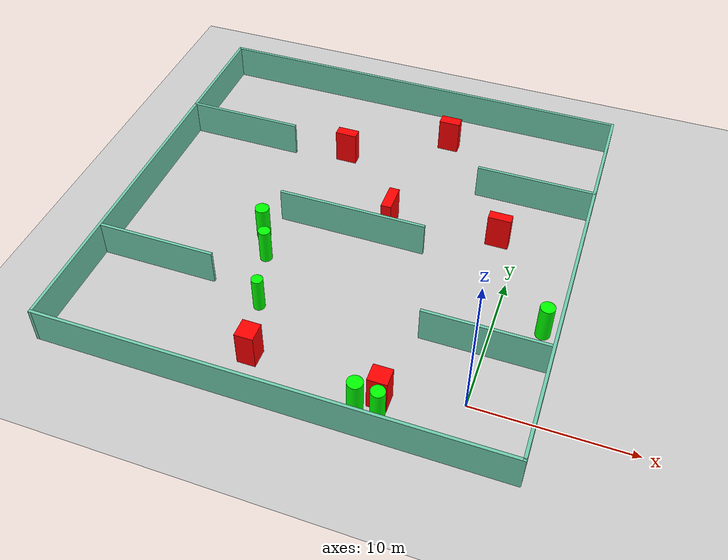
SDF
<sdf version="1.7">
 <world name="default">
  <light name="sun" type="directional">
   <pose>0 0 10 0 -0 0</pose>
   <diffuse>0.8 0.8 0.8 1</diffuse>
   <specular>0.2 0.2 0.2 1</specular>
   <attenuation>
    <range>1000</range>
    <constant>0.9</constant>
    <linear>0.01</linear>
    <quadratic>0.001</quadratic>
   </attenuation>
   <direction>-0.5 0.1 -0.9</direction>
   <spot><inner_angle>0</inner_angle><outer_angle>0</outer_angle><falloff>0</falloff></spot>
  </light>
  <model name="ground_plane">
   <static>1</static>
   <link name="link">
    <collision name="collision">
     <geometry><plane><normal>0 0 1</normal><size>100 100</size></plane></geometry>
     <surface>
      <contact><collide_bitmask>65535</collide_bitmask></contact>
      <friction><ode><mu>100</mu><mu2>50</mu2></ode></friction>
     </surface>
    </collision>
    <visual name="visual">
     <cast_shadows>0</cast_shadows>
     <geometry><plane><normal>0 0 1</normal><size>100 100</size></plane></geometry>
     <material>
      <script><uri>file://media/materials/scripts/gazebo.material</uri><name>Gazebo/Grey</name></script>
     </material>
    </visual>
   </link>
  </model>
  <gravity>0 0 -9.8</gravity>
  <magnetic_field>6e-06 2.3e-05 -4.2e-05</magnetic_field>
  <atmosphere type="adiabatic"/>
  <physics type="ode">
   <max_step_size>0.001</max_step_size>
   <real_time_factor>1</real_time_factor>
   <real_time_update_rate>1000</real_time_update_rate>
  </physics>
  <scene><ambient>0.4 0.4 0.4 1</ambient><background>0.7 0.7 0.7 1</background><shadows>1</shadows></scene>
  <spherical_coordinates>
   <surface_model>EARTH_WGS84</surface_model>
   <latitude_deg>0</latitude_deg>
   <longitude_deg>0</longitude_deg>
   <elevation>0</elevation>
   <heading_deg>0</heading_deg>
  </spherical_coordinates>
  <model name="my_base_walls">
   <link name="Wall_10">
    <collision name="Wall_10_Collision">
     <geometry><box><size>8.2 0.2 2.5</size></box></geometry>
     <pose>0 0 1.25 0 -0 0</pose>
    </collision>
    <visual name="Wall_10_Visual">
     <pose>0 0 1.25 0 -0 0</pose>
     <geometry><box><size>8.2 0.2 2.5</size></box></geometry>
     <material>
      <script><uri>file://media/materials/scripts/gazebo.material</uri><name>Gazebo/Grey</name></script>
      <ambient>0.435294 0.796078 0.67451 1</ambient>
     </material>
     <meta><layer>0</layer></meta>
    </visual>
    <pose>-11 -7 0 0 -0 0</pose>
   </link>
   <link name="Wall_12">
    <collision name="Wall_12_Collision">
     <geometry><box><size>8.2 0.2 2.5</size></box></geometry>
     <pose>0 0 1.25 0 -0 0</pose>
    </collision>
    <visual name="Wall_12_Visual">
     <pose>0 0 1.25 0 -0 0</pose>
     <geometry><box><size>8.2 0.2 2.5</size></box></geometry>
     <material>
      <script><uri>file://media/materials/scripts/gazebo.material</uri><name>Gazebo/Grey</name></script>
      <ambient>0.435294 0.796078 0.67451 1</ambient>
     </material>
     <meta><layer>0</layer></meta>
    </visual>
    <pose>-11 7 0 0 -0 0</pose>
   </link>
   <link name="Wall_14">
    <collision name="Wall_14_Collision">
     <geometry><box><size>8.2 0.2 2.5</size></box></geometry>
     <pose>0 0 1.25 0 -0 0</pose>
    </collision>
    <visual name="Wall_14_Visual">
     <pose>0 0 1.25 0 -0 0</pose>
     <geometry><box><size>8.2 0.2 2.5</size></box></geometry>
     <material>
      <script><uri>file://media/materials/scripts/gazebo.material</uri><name>Gazebo/Grey</name></script>
      <ambient>0.435294 0.796078 0.67451 1</ambient>
     </material>
     <meta><layer>0</layer></meta>
    </visual>
    <pose>11 7 0 0 -0 3.14159</pose>
   </link>
   <link name="Wall_16">
    <collision name="Wall_16_Collision">
     <geometry><box><size>10.2 0.2 2.5</size></box></geometry>
     <pose>0 0 1.25 0 -0 0</pose>
    </collision>
    <visual name="Wall_16_Visual">
     <pose>0 0 1.25 0 -0 0</pose>
     <geometry><box><size>10.2 0.2 2.5</size></box></geometry>
     <material>
      <script><uri>file://media/materials/scripts/gazebo.material</uri><name>Gazebo/Grey</name></script>
      <ambient>0.435294 0.796078 0.67451 1</ambient>
     </material>
     <meta><layer>0</layer></meta>
    </visual>
    <pose>0 0 0 0 -0 3.14159</pose>
   </link>
   <link name="Wall_2">
    <collision name="Wall_2_Collision">
     <geometry><box><size>30.2 0.2 2.5</size></box></geometry>
     <pose>0 0 1.25 0 -0 0</pose>
    </collision>
    <visual name="Wall_2_Visual">
     <pose>0 0 1.25 0 -0 0</pose>
     <geometry><box><size>30.2 0.2 2.5</size></box></geometry>
     <material>
      <script><uri>file://media/materials/scripts/gazebo.material</uri><name>Gazebo/Grey</name></script>
      <ambient>0.435294 0.796078 0.67451 1</ambient>
     </material>
     <meta><layer>0</layer></meta>
    </visual>
    <pose>0 -15 0 0 -0 3.14159</pose>
   </link>
   <link name="Wall_3">
    <collision name="Wall_3_Collision">
     <geometry><box><size>30.2 0.2 2.5</size></box></geometry>
     <pose>0 0 1.25 0 -0 0</pose>
    </collision>
    <visual name="Wall_3_Visual">
     <pose>0 0 1.25 0 -0 0</pose>
     <geometry><box><size>30.2 0.2 2.5</size></box></geometry>
     <material>
      <script><uri>file://media/materials/scripts/gazebo.material</uri><name>Gazebo/Grey</name></script>
      <ambient>0.435294 0.796078 0.67451 1</ambient>
     </material>
     <meta><layer>0</layer></meta>
    </visual>
    <pose>-15 0 0 0 -0 1.5708</pose>
   </link>
   <link name="Wall_4">
    <collision name="Wall_4_Collision">
     <geometry><box><size>30.2 0.2 2.5</size></box></geometry>
     <pose>0 0 1.25 0 -0 0</pose>
    </collision>
    <visual name="Wall_4_Visual">
     <pose>0 0 1.25 0 -0 0</pose>
     <geometry><box><size>30.2 0.2 2.5</size></box></geometry>
     <material>
      <script><uri>file://media/materials/scripts/gazebo.material</uri><name>Gazebo/Grey</name></script>
      <ambient>0.435294 0.796078 0.67451 1</ambient>
     </material>
     <meta><layer>0</layer></meta>
    </visual>
    <pose>0 15 0 0 -0 0</pose>
   </link>
   <link name="Wall_6">
    <collision name="Wall_6_Collision">
     <geometry><box><size>30.2 0.2 2.5</size></box></geometry>
     <pose>0 0 1.25 0 -0 0</pose>
    </collision>
    <visual name="Wall_6_Visual">
     <pose>0 0 1.25 0 -0 0</pose>
     <geometry><box><size>30.2 0.2 2.5</size></box></geometry>
     <material>
      <script><uri>file://media/materials/scripts/gazebo.material</uri><name>Gazebo/Grey</name></script>
      <ambient>0.435294 0.796078 0.67451 1</ambient>
     </material>
     <meta><layer>0</layer></meta>
    </visual>
    <pose>15 0 0 0 -0 1.5708</pose>
   </link>
   <link name="Wall_8">
    <collision name="Wall_8_Collision">
     <geometry><box><size>8.2 0.2 2.5</size></box></geometry>
     <pose>0 0 1.25 0 -0 0</pose>
    </collision>
    <visual name="Wall_8_Visual">
     <pose>0 0 1.25 0 -0 0</pose>
     <geometry><box><size>8.2 0.2 2.5</size></box></geometry>
     <material>
      <script><uri>file://media/materials/scripts/gazebo.material</uri><name>Gazebo/Grey</name></script>
      <ambient>0.435294 0.796078 0.67451 1</ambient>
     </material>
     <meta><layer>0</layer></meta>
    </visual>
    <pose>11 -7 0 0 -0 3.14159</pose>
   </link>
   <static>1</static>
   <pose>-11 11 0 0 -0 0</pose>
  </model>
  <model name="cylinder1">
   <static>1</static>
   <link name="link">
    <inertial>
     <mass>1</mass>
     <inertia><ixx>0.5</ixx><ixy>0</ixy><ixz>0</ixz><iyy>0.5</iyy><iyz>0</iyz><izz>1</izz></inertia>
    </inertial>
    <collision name="collision">
     <geometry><cylinder><radius>0.4514979426985276</radius><length>2.5</length></cylinder></geometry>
    </collision>
    <visual name="visual">
     <geometry><cylinder><radius>0.4514979426985276</radius><length>2.5</length></cylinder></geometry>
     <material>
      <ambient>0 1 0 1</ambient>
      <diffuse>0 1 0 1</diffuse>
      <specular>0.1 0.1 0.1 1</specular>
      <emissive>0 0 0 0</emissive>
     </material>
    </visual>
   </link>
   <pose>-4.570896888285603 -2.4855631848530906 1.25 0 0 0</pose>
  </model>
  <model name="cylinder2">
   <static>1</static>
   <link name="link">
    <inertial>
     <mass>1</mass>
     <inertia><ixx>0.5</ixx><ixy>0</ixy><ixz>0</ixz><iyy>0.5</iyy><iyz>0</iyz><izz>1</izz></inertia>
    </inertial>
    <collision name="collision">
     <geometry><cylinder><radius>0.47899062576672713</radius><length>2.5</length></cylinder></geometry>
    </collision>
    <visual name="visual">
     <geometry><cylinder><radius>0.47899062576672713</radius><length>2.5</length></cylinder></geometry>
     <material>
      <ambient>0 1 0 1</ambient>
      <diffuse>0 1 0 1</diffuse>
      <specular>0.1 0.1 0.1 1</specular>
      <emissive>0 0 0 0</emissive>
     </material>
    </visual>
   </link>
   <pose>3.054835905520779 6.77203496390046 1.25 0 0 0</pose>
  </model>
  <model name="cylinder3">
   <static>1</static>
   <link name="link">
    <inertial>
     <mass>1</mass>
     <inertia><ixx>0.5</ixx><ixy>0</ixy><ixz>0</ixz><iyy>0.5</iyy><iyz>0</iyz><izz>1</izz></inertia>
    </inertial>
    <collision name="collision">
     <geometry><cylinder><radius>0.47694826638507887</radius><length>2.5</length></cylinder></geometry>
    </collision>
    <visual name="visual">
     <geometry><cylinder><radius>0.47694826638507887</radius><length>2.5</length></cylinder></geometry>
     <material>
      <ambient>0 1 0 1</ambient>
      <diffuse>0 1 0 1</diffuse>
      <specular>0.1 0.1 0.1 1</specular>
      <emissive>0 0 0 0</emissive>
     </material>
    </visual>
   </link>
   <pose>-16.620622083901047 9.000578348659939 1.25 0 0 0</pose>
  </model>
  <model name="cylinder4">
   <static>1</static>
   <link name="link">
    <inertial>
     <mass>1</mass>
     <inertia><ixx>0.5</ixx><ixy>0</ixy><ixz>0</ixz><iyy>0.5</iyy><iyz>0</iyz><izz>1</izz></inertia>
    </inertial>
    <collision name="collision">
     <geometry><cylinder><radius>0.4114579069245108</radius><length>2.5</length></cylinder></geometry>
    </collision>
    <visual name="visual">
     <geometry><cylinder><radius>0.4114579069245108</radius><length>2.5</length></cylinder></geometry>
     <material>
      <ambient>0 1 0 1</ambient>
      <diffuse>0 1 0 1</diffuse>
      <specular>0.1 0.1 0.1 1</specular>
      <emissive>0 0 0 0</emissive>
     </material>
    </visual>
   </link>
   <pose>-15.620128073042858 7.062259051426539 1.25 0 0 0</pose>
  </model>
  <model name="cylinder5">
   <static>1</static>
   <link name="link">
    <inertial>
     <mass>1</mass>
     <inertia><ixx>0.5</ixx><ixy>0</ixy><ixz>0</ixz><iyy>0.5</iyy><iyz>0</iyz><izz>1</izz></inertia>
    </inertial>
    <collision name="collision">
     <geometry><cylinder><radius>0.38259376683982105</radius><length>2.5</length></cylinder></geometry>
    </collision>
    <visual name="visual">
     <geometry><cylinder><radius>0.38259376683982105</radius><length>2.5</length></cylinder></geometry>
     <material>
      <ambient>0 1 0 1</ambient>
      <diffuse>0 1 0 1</diffuse>
      <specular>0.1 0.1 0.1 1</specular>
      <emissive>0 0 0 0</emissive>
     </material>
    </visual>
   </link>
   <pose>-14.310791459211785 2.9726668838489374 1.25 0 0 0</pose>
  </model>
  <model name="cylinder6">
   <static>1</static>
   <link name="link">
    <inertial>
     <mass>1</mass>
     <inertia><ixx>0.5</ixx><ixy>0</ixy><ixz>0</ixz><iyy>0.5</iyy><iyz>0</iyz><izz>1</izz></inertia>
    </inertial>
    <collision name="collision">
     <geometry><cylinder><radius>0.4929702418939098</radius><length>2.5</length></cylinder></geometry>
    </collision>
    <visual name="visual">
     <geometry><cylinder><radius>0.4929702418939098</radius><length>2.5</length></cylinder></geometry>
     <material>
      <ambient>0 1 0 1</ambient>
      <diffuse>0 1 0 1</diffuse>
      <specular>0.1 0.1 0.1 1</specular>
      <emissive>0 0 0 0</emissive>
     </material>
    </visual>
   </link>
   <pose>-5.981440889003105 -2.334129666784609 1.25 0 0 0</pose>
  </model>
  <model name="box1">
   <static>1</static>
   <link name="link">
    <inertial>
     <mass>1</mass>
     <inertia><ixx>0.083</ixx><ixy>0</ixy><ixz>0</ixz><iyy>0.083</iyy><iyz>0</iyz><izz>0.083</izz></inertia>
    </inertial>
    <collision name="collision">
     <geometry><box><size>1.2406109972011188 1.1849128146089103 2.5</size></box></geometry>
    </collision>
    <visual name="visual">
     <geometry><box><size>1.2406109972011188 1.1849128146089103 2.5</size></box></geometry>
     <material>
      <ambient>1 0 0 1</ambient>
      <diffuse>1 0 0 1</diffuse>
      <specular>0.1 0.1 0.1 1</specular>
      <emissive>0 0 0 0</emissive>
     </material>
    </visual>
    <sensor name="my_contact" type="contact">
     <contact><collision>box_collision</collision><topic>__default_topic__</topic></contact>
    </sensor>
   </link>
   <pose>-4.821393310438417 -1.3601430559354912 1.25 0 0 0</pose>
  </model>
  <model name="box2">
   <static>1</static>
   <link name="link">
    <inertial>
     <mass>1</mass>
     <inertia><ixx>0.083</ixx><ixy>0</ixy><ixz>0</ixz><iyy>0.083</iyy><iyz>0</iyz><izz>0.083</izz></inertia>
    </inertial>
    <collision name="collision">
     <geometry><box><size>0.7071232632052725 1.921920331070053 2.5</size></box></geometry>
    </collision>
    <visual name="visual">
     <geometry><box><size>0.7071232632052725 1.921920331070053 2.5</size></box></geometry>
     <material>
      <ambient>1 0 0 1</ambient>
      <diffuse>1 0 0 1</diffuse>
      <specular>0.1 0.1 0.1 1</specular>
      <emissive>0 0 0 0</emissive>
     </material>
    </visual>
    <sensor name="my_contact" type="contact">
     <contact><collision>box_collision</collision><topic>__default_topic__</topic></contact>
    </sensor>
   </link>
   <pose>-8.903756262679266 12.905385210294138 1.25 0 0 0</pose>
  </model>
  <model name="box3">
   <static>1</static>
   <link name="link">
    <inertial>
     <mass>1</mass>
     <inertia><ixx>0.083</ixx><ixy>0</ixy><ixz>0</ixz><iyy>0.083</iyy><iyz>0</iyz><izz>0.083</izz></inertia>
    </inertial>
    <collision name="collision">
     <geometry><box><size>1.5540491240998824 0.6703109252304099 2.5</size></box></geometry>
    </collision>
    <visual name="visual">
     <geometry><box><size>1.5540491240998824 0.6703109252304099 2.5</size></box></geometry>
     <material>
      <ambient>1 0 0 1</ambient>
      <diffuse>1 0 0 1</diffuse>
      <specular>0.1 0.1 0.1 1</specular>
      <emissive>0 0 0 0</emissive>
     </material>
    </visual>
    <sensor name="my_contact" type="contact">
     <contact><collision>box_collision</collision><topic>__default_topic__</topic></contact>
    </sensor>
   </link>
   <pose>-1.4521966590909052 13.584418716930557 1.25 0 0 0</pose>
  </model>
  <model name="box4">
   <static>1</static>
   <link name="link">
    <inertial>
     <mass>1</mass>
     <inertia><ixx>0.083</ixx><ixy>0</ixy><ixz>0</ixz><iyy>0.083</iyy><iyz>0</iyz><izz>0.083</izz></inertia>
    </inertial>
    <collision name="collision">
     <geometry><box><size>1.481080162286828 0.7712784832801792 2.5</size></box></geometry>
    </collision>
    <visual name="visual">
     <geometry><box><size>1.481080162286828 0.7712784832801792 2.5</size></box></geometry>
     <material>
      <ambient>1 0 0 1</ambient>
      <diffuse>1 0 0 1</diffuse>
      <specular>0.1 0.1 0.1 1</specular>
      <emissive>0 0 0 0</emissive>
     </material>
    </visual>
    <sensor name="my_contact" type="contact">
     <contact><collision>box_collision</collision><topic>__default_topic__</topic></contact>
    </sensor>
   </link>
   <pose>-7.326888319154877 22.48790747055367 1.25 0 0 0</pose>
  </model>
  <model name="box5">
   <static>1</static>
   <link name="link">
    <inertial>
     <mass>1</mass>
     <inertia><ixx>0.083</ixx><ixy>0</ixy><ixz>0</ixz><iyy>0.083</iyy><iyz>0</iyz><izz>0.083</izz></inertia>
    </inertial>
    <collision name="collision">
     <geometry><box><size>1.5085139549499813 0.7083218286260461 2.5</size></box></geometry>
    </collision>
    <visual name="visual">
     <geometry><box><size>1.5085139549499813 0.7083218286260461 2.5</size></box></geometry>
     <material>
      <ambient>1 0 0 1</ambient>
      <diffuse>1 0 0 1</diffuse>
      <specular>0.1 0.1 0.1 1</specular>
      <emissive>0 0 0 0</emissive>
     </material>
    </visual>
    <sensor name="my_contact" type="contact">
     <contact><collision>box_collision</collision><topic>__default_topic__</topic></contact>
    </sensor>
   </link>
   <pose>-14.059921804997995 18.612132362813103 1.25 0 0 0</pose>
  </model>
  <model name="box6">
   <static>1</static>
   <link name="link">
    <inertial>
     <mass>1</mass>
     <inertia><ixx>0.083</ixx><ixy>0</ixy><ixz>0</ixz><iyy>0.083</iyy><iyz>0</iyz><izz>0.083</izz></inertia>
    </inertial>
    <collision name="collision">
     <geometry><box><size>1.203744115581412 1.270634716618083 2.5</size></box></geometry>
    </collision>
    <visual name="visual">
     <geometry><box><size>1.203744115581412 1.270634716618083 2.5</size></box></geometry>
     <material>
      <ambient>1 0 0 1</ambient>
      <diffuse>1 0 0 1</diffuse>
      <specular>0.1 0.1 0.1 1</specular>
      <emissive>0 0 0 0</emissive>
     </material>
    </visual>
    <sensor name="my_contact" type="contact">
     <contact><collision>box_collision</collision><topic>__default_topic__</topic></contact>
    </sensor>
   </link>
   <pose>-13.177594534302347 -0.9176490688395735 1.25 0 0 0</pose>
  </model>
 </world>
</sdf>
